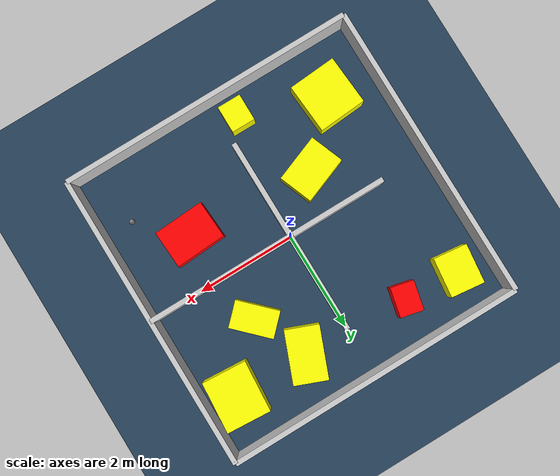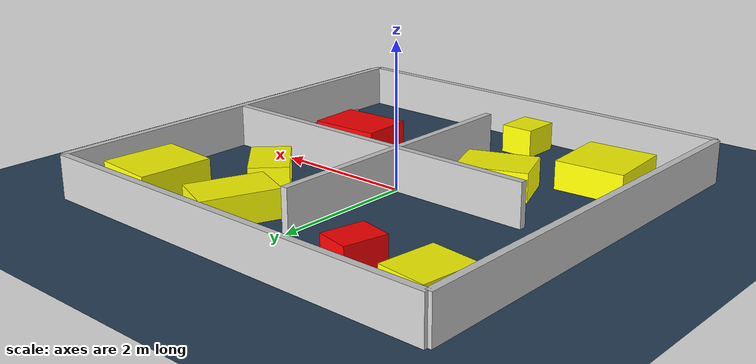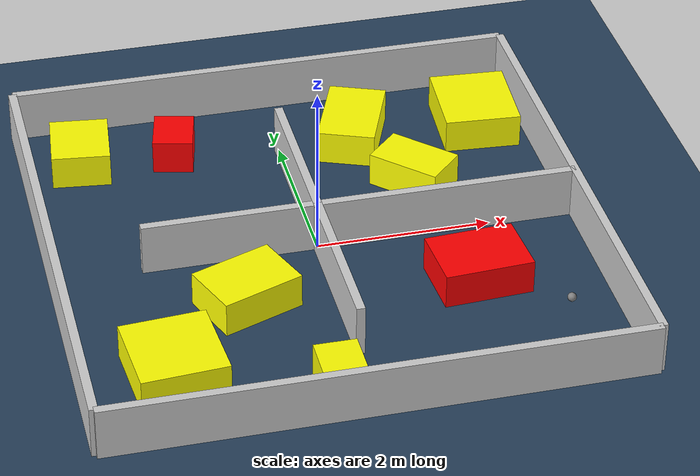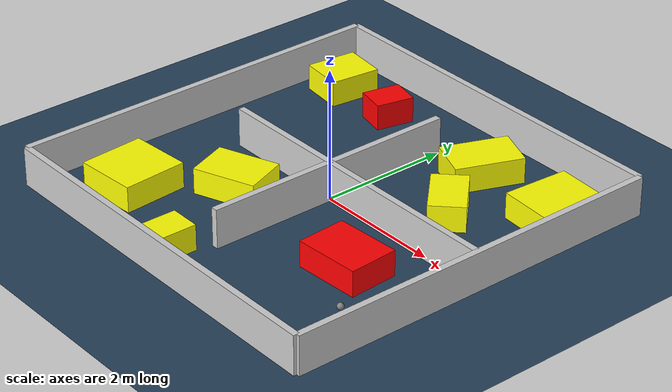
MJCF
<?xml version="1.0" ?>
<mujoco model="generated_environment">
  <option timestep="0.01" integrator="RK4" cone="elliptic"/>
  <default>
    <geom density="1"/>
  </default>
  <asset>
    <texture builtin="gradient" height="3072" rgb1="0.3 0.5 0.7" rgb2="0 0 0" type="skybox" width="512"/>
    <texture builtin="checker" height="300" mark="edge" markrgb="0.8 0.8 0.8" name="groundplane" rgb1="0.2 0.3 0.4" rgb2="0.1 0.2 0.3" type="2d" width="300"/>
    <material name="groundplane" reflectance="0.2" texrepeat="5 5" texture="groundplane" texuniform="true"/>
    <material name="robot" rgba="0.0 1.0 0.0 1"/>
  </asset>
  <worldbody>
    <light dir="0 0 -1" directional="true" pos="0 0 1.5"/>
    <geom condim="4" friction="1.0 0.005 0.001" material="groundplane" name="floor" size="0 0 0.05" type="plane"/>
    <body name="walls">
      <geom name="wall_1" condim="4" pos="-3.0 0.0 0.3" rgba="0.800000011920929 0.800000011920929 0.800000011920929 1.0" size="0.05 3.0 0.3" type="box"/>
      <geom name="wall_2" condim="4" pos="3.0 0.0 0.3" rgba="0.800000011920929 0.800000011920929 0.800000011920929 1.0" size="0.05 3.0 0.3" type="box"/>
      <geom name="wall_3" condim="4" pos="0.0 -3.0 0.3" rgba="0.800000011920929 0.800000011920929 0.800000011920929 1.0" size="3.0 0.05 0.3" type="box"/>
      <geom name="wall_4" condim="4" pos="0.0 3.0 0.3" rgba="0.800000011920929 0.800000011920929 0.800000011920929 1.0" size="3.0 0.05 0.3" type="box"/>
      <geom name="wall_5" condim="4" pos="1.5 0.0 0.3" rgba="0.800000011920929 0.800000011920929 0.800000011920929 1.0" size="1.5 0.05 0.3" type="box"/>
      <geom name="wall_6" condim="4" pos="-1.0 0.0 0.3" rgba="0.800000011920929 0.800000011920929 0.800000011920929 1.0" size="1.0 0.05 0.3" type="box"/>
      <geom name="wall_7" condim="4" pos="0.0 -1.0 0.3" rgba="0.800000011920929 0.800000011920929 0.800000011920929 1.0" size="0.05 1.0 0.3" type="box"/>
      <geom name="wall_8" condim="4" pos="0.0 1.0 0.3" rgba="0.800000011920929 0.800000011920929 0.800000011920929 1.0" size="0.05 1.0 0.3" type="box"/>
    </body>
    <body name="robot">
      <joint name="joint_x" type="slide" pos="0 0 0" axis="1 0 0"/>
      <joint name="joint_y" type="slide" pos="0 0 0" axis="0 1 0"/>
      <geom name="robot" type="sphere" pos="2.4041132125501803 -1.807518662421498 0.2" size="0.05" mass="5." friction="1.0 0.005 0.0001" condim="4"/>
      <site name="sensor_ball"/>
    </body>
    <body name="obstacle_1_movable">
      <geom name="obstacle_1_movable" condim="4" pos="1.3747743356986746 0.9637054497983031 0.2" euler="0 0 314.8463028786333" friction="1.0 0.005 0.001" rgba="1 1 0 1" size="0.43415264075600624 0.27050611399188956 0.2" type="box" mass="0.1"/>
      <joint type="free"/>
    </body>
    <body name="obstacle_2_movable">
      <geom name="obstacle_2_movable" condim="4" pos="-1.9887596068150115 -1.9184722530188263 0.2" euler="0 0 274.1912351849653" friction="1.0 0.005 0.001" rgba="1 1 0 1" size="0.5018686234198914 0.4842310996406001 0.2" type="box" mass="0.1"/>
      <joint type="free"/>
    </body>
    <body name="obstacle_3_static">
      <geom name="obstacle_3_static" condim="4" pos="1.5850867866571696 -1.0141009670026417 0.2" euler="0 0 273.343452341066" friction="1.0 0.005 0.001" rgba="1 0 0 1" size="0.3806885121359595 0.5091495357744142 0.2" type="box"/>
    </body>
    <body name="obstacle_4_movable">
      <geom name="obstacle_4_movable" condim="4" pos="0.8964655523935852 2.0255120748716937 0.2" euler="0 0 248.2781205189554" friction="1.0 0.005 0.001" rgba="1 1 0 1" size="0.5241530639791931 0.33792183308305346 0.2" type="box" mass="0.1"/>
      <joint type="free"/>
    </body>
    <body name="obstacle_5_movable">
      <geom name="obstacle_5_movable" condim="4" pos="-2.337991817883809 2.1825726353435067 0.2" euler="0 0 353.25648304802485" friction="1.0 0.005 0.001" rgba="1 1 0 1" size="0.33936841074992624 0.39613636566562327 0.2" type="box" mass="0.1"/>
      <joint type="free"/>
    </body>
    <body name="obstacle_6_static">
      <geom name="obstacle_6_static" condim="4" pos="-1.2369911008469254 2.122782404473154 0.2" euler="0 0 347.3248599924122" friction="1.0 0.005 0.001" rgba="1 0 0 1" size="0.23371992573916234 0.2946931391653997 0.2" type="box"/>
    </body>
    <body name="obstacle_7_movable">
      <geom name="obstacle_7_movable" condim="4" pos="-0.9902347316411095 -0.8717625230633841 0.2" euler="0 0 290.97434825121724" friction="1.0 0.005 0.001" rgba="1 1 0 1" size="0.34951721902269445 0.48781603162354514 0.2" type="box" mass="0.1"/>
      <joint type="free"/>
    </body>
    <body name="obstacle_8_movable">
      <geom name="obstacle_8_movable" condim="4" pos="-0.3393738826254671 -2.5063681380356386 0.2" euler="0 0 179.65202273533114" friction="1.0 0.005 0.001" rgba="1 1 0 1" size="0.23880760331972484 0.2732502010259301 0.2" type="box" mass="0.1"/>
      <joint type="free"/>
    </body>
    <body name="obstacle_9_movable">
      <geom name="obstacle_9_movable" condim="4" pos="2.403347252170157 2.0084624765050823 0.2" euler="0 0 85.94525097193325" friction="1.0 0.005 0.001" rgba="1 1 0 1" size="0.5172595881081556 0.44690420495576383 0.2" type="box" mass="0.1"/>
      <joint type="free"/>
    </body>
  </worldbody>
  <actuator>
    <motor name="actuator_x" joint="joint_x" gear="1" ctrlrange="-1 1"/>
    <motor name="actuator_y" joint="joint_y" gear="1" ctrlrange="-1 1"/>
  </actuator>
</mujoco>
